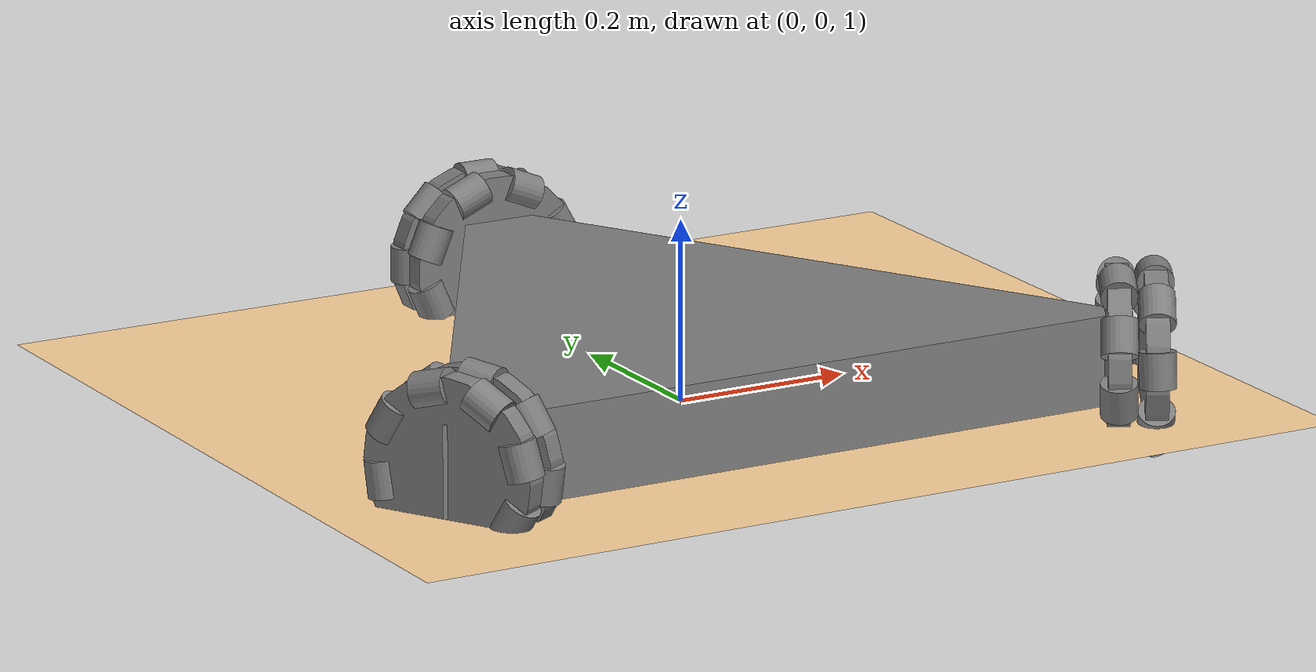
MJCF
<?xml version="1.0" encoding="utf-8"?>
<mujoco model="triangular_base">

	<!-- set some defaults for units and lighting -->
	<compiler angle="degree" meshdir="./stl_exports/"/>

	<option timestep="0.001"/>

	<!-- import our stl files -->
	<asset>
		<mesh name="baseplate" file="baseplate_robot.stl" />
		<mesh name="wheel" file="wheel_for_mujoco.stl" />
	</asset>

	<!-- define our robot model -->
	<worldbody>
		<!-- set up a light pointing down on the robot -->
		<light directional="true" pos="-0.5 0.5 3" dir="0 0 -1" />
		<camera name="track_camera" mode="targetbodycom" target="base" euler="0 0 0" fovy="60" pos="0 0 2" />
		<!-- add a floor so we don't stare off into the abyss -->
		<geom name="floor" pos="0 0 1" size="50 50 50" type="plane" rgba="1 0.83 0.61 0.5"/>

		<!-- start building our model -->
		<body name="base" pos="0 0 0">
			<joint name="joint_base" type="free" axis="0 0 0"/>
			<geom name="baseplate_robot" type="mesh" mesh="baseplate" pos="0 0 1"/>
			<inertial pos="0 0 1" mass="150" diaginertia="1 1 1"/>

			<!-- Attach wheels to the main body -->
			<!--							cos(15 degree)	sin(15 degree)-->
			<body name="wheel_1_body" pos=".4 -.2325 1.05" quat="0.5 1 0 .866">
				<joint name="joint1" type="hinge" axis="0 0 1" damping="50"/>
				<geom type="cylinder" size=".1 .0125 .01"/>

				<inertial pos="0 0 1" mass="5" diaginertia="0.5 0.5 1"/>

				<body name="wheel_1_omni0" pos="0 -.085 0" quat="0 -1 0 1">
					<joint name="joint1_omni0" type="hinge" axis="0 0 1" damping="0.1"/>
					<geom type="cylinder" size=".02 .02 .02" contype="1" conaffinity="0"/>

					<inertial pos="0 0 1" mass="0.001" diaginertia="0.00001 0.00001 0.00001"/>

				</body>

				<body name="wheel_1_omni1" pos="0 .085 0" quat="0 -1 0 1">
					<joint name="joint1_omni1" type="hinge" axis="0 0 1" damping="0.1"/>
					<geom type="cylinder" size=".02 .02 .02" contype="1" conaffinity="0"/>

					<inertial pos="0 0 1" mass="0.001" diaginertia="0.00001 0.00001 0.00001"/>

				</body>

				<body name="wheel_1_omni2" pos=".085 0 0" quat="1 1 0 0">
					<joint name="joint1_omni2" type="hinge" axis="0 0 1" damping="0.1"/>
					<geom type="cylinder" size=".02 .02 .02" contype="1" conaffinity="0"/>

					<inertial pos="0 0 1" mass="5" diaginertia="0.00001 0.00001 0.00001"/>

				</body>

				<body name="wheel_1_omni3" pos="-.085 0 0" quat="1 1 0 0">
					<joint name="joint1_omni3" type="hinge" axis="0 0 1" damping="0.1"/>
					<geom type="cylinder" size=".02 .02 .02" contype="1" conaffinity="0"/>

					<inertial pos="0 0 1" mass="0.001" diaginertia="0.00001 0.00001 0.00001"/>

				</body>

				<body name="wheel_1_omni4" pos="-.06 -.06 0" quat="0.676 0.227 0.661 -.233">
					<joint name="joint1_omni4" type="hinge" axis="0 0 1" damping="0.1"/>
					<geom type="cylinder" size=".02 .02 .02" contype="1" conaffinity="0"/>

					<inertial pos="0 0 1" mass="0.001" diaginertia="0.00001 0.00001 0.00001"/>

				</body>

				<body name="wheel_1_omni5" pos=".06 -.06 0" quat="0.661 -0.268 0.645 .274">
					<joint name="joint1_omni5" type="hinge" axis="0 0 1" damping="0.1"/>
					<geom type="cylinder" size=".02 .02 .02" contype="1" conaffinity="0"/>

					<inertial pos="0 0 1" mass="0.001" diaginertia="0.00001 0.00001 0.00001"/>

				</body>

				<body name="wheel_1_omni6" pos=".06 .06 0" quat="0.276 -0.642 0.268 .663">
					<joint name="joint1_omni6" type="hinge" axis="0 0 1" damping="0.1"/>
					<geom type="cylinder" size=".02 .02 .02" contype="1" conaffinity="0"/>

					<inertial pos="0 0 1" mass="0.001" diaginertia="0.00001 0.00001 0.00001"/>

				</body>

				<body name="wheel_1_omni7" pos="-.06 .06 0" quat="-0.276 -0.642 -0.268 .663">
					<joint name="joint1_omni7" type="hinge" axis="0 0 1" damping="0.1"/>
					<geom type="cylinder" size=".02 .02 .02" contype="1" conaffinity="0"/>

					<inertial pos="0 0 1" mass="0.001" diaginertia="0.00001 0.00001 0.00001"/>

				</body>

				<!-- Second Wheel -->

				<body name="wheel_1_body1" pos="0 0 0.04" quat="0.195 0 0 0.975">
					<geom type="cylinder" size=".1 .0125 .01"/>

					<inertial pos="0 0 1" mass="5" diaginertia="0.5 0.5 1"/>

					<body name="wheel_1_1omni0" pos="0 -.085 0" quat="0 -1 0 1">
						<joint name="joint1_1omni0" type="hinge" axis="0 0 1" damping="0.1"/>
						<geom type="cylinder" size=".02 .02 .02" contype="1" conaffinity="0"/>

						<inertial pos="0 0 1" mass="1" diaginertia="0.00001 0.00001 0.00001"/>

					</body>

					<body name="wheel_1_1omni1" pos="0 .085 0" quat="0 -1 0 1">
						<joint name="joint1_1omni1" type="hinge" axis="0 0 1" damping="0.1"/>
						<geom type="cylinder" size=".02 .02 .02" contype="1" conaffinity="0"/>

						<inertial pos="0 0 1" mass="0.001" diaginertia="0.00001 0.00001 0.00001"/>
					</body>

					<body name="wheel_1_1omni2" pos=".085 0 0" quat="1 1 0 0">
						<joint name="joint1_1omni2" type="hinge" axis="0 0 1" damping="0.1"/>
						<geom type="cylinder" size=".02 .02 .02" contype="1" conaffinity="0"/>

						<inertial pos="0 0 1" mass="0.001" diaginertia="0.00001 0.00001 0.00001"/>

					</body>

					<body name="wheel_1_1omni3" pos="-.085 0 0" quat="1 1 0 0">
						<joint name="joint1_1omni3" type="hinge" axis="0 0 1" damping="0.1"/>
						<geom type="cylinder" size=".02 .02 .02" contype="1" conaffinity="0"/>

						<inertial pos="0 0 1" mass="0.001" diaginertia="0.00001 0.00001 0.00001"/>

					</body>

					<body name="wheel_1_1omni4" pos="-.06 -.06 0" quat="0.676 0.227 0.661 -.233">
						<joint name="joint1_1omni4" type="hinge" axis="0 0 1" damping="0.1"/>
						<geom type="cylinder" size=".02 .02 .02" contype="1" conaffinity="0"/>

						<inertial pos="0 0 1" mass="0.001" diaginertia="0.00001 0.00001 0.00001"/>

					</body>

					<body name="wheel_1_1omni5" pos=".06 -.06 0" quat="0.661 -0.268 0.645 .274">
						<joint name="joint1_1omni5" type="hinge" axis="0 0 1" damping="0.1"/>
						<geom type="cylinder" size=".02 .02 .02" contype="1" conaffinity="0"/>

						<inertial pos="0 0 1" mass="0.001" diaginertia="0.00001 0.00001 0.00001"/>

					</body>

					<body name="wheel_1_1omni6" pos=".06 .06 0" quat="0.276 -0.642 0.268 .663">
						<joint name="joint1_1omni6" type="hinge" axis="0 0 1" damping="0.1"/>
						<geom type="cylinder" size=".02 .02 .02" contype="1" conaffinity="0"/>

						<inertial pos="0 0 1" mass="0.001" diaginertia="0.00001 0.00001 0.00001"/>

					</body>

					<body name="wheel_1_1omni7" pos="-.06 .06 0" quat="-0.276 -0.642 -0.268 .663">
						<joint name="joint1_1omni7" type="hinge" axis="0 0 1" damping="0.1"/>
						<geom type="cylinder" size=".02 .02 .02" contype="1" conaffinity="0"/>

						<inertial pos="0 0 1" mass="0.001" diaginertia="0.00001 0.00001 0.00001"/>

					</body>

				</body>

			</body>

			<body name="wheel_2_body" pos="0 .46 1.05" quat="1 1 0 0"> <!-- This quat makes cylinder parallel with 3D y-axis and straight up -->
				<joint name="joint2" type="hinge" axis="0 0 1" damping="50"/> <!-- GOOD -->
				<geom type="cylinder" size=".1 .0125 .01"/>
				<inertial pos="0 0 1" mass="5" diaginertia="0.5 0.5 1"/>

				<body name="wheel_2_omni0" pos="0 -.085 0" quat="0 -1 0 1">
					<joint name="joint2_omni0" type="hinge" axis="0 0 1" damping="0.1"/>
					<geom type="cylinder" size=".02 .02 .02" contype="1" conaffinity="0"/>

					<inertial pos="0 0 1" mass="0.001" diaginertia="0.00001 0.00001 0.00001"/>

				</body>

				<body name="wheel_2_omni1" pos="0 .085 0" quat="0 -1 0 1">
					<joint name="joint2_omni1" type="hinge" axis="0 0 1" damping="0.1"/>
					<geom type="cylinder" size=".02 .02 .02" contype="1" conaffinity="0"/>

					<inertial pos="0 0 1" mass="0.001" diaginertia="0.00001 0.00001 0.00001"/>

				</body>

				<body name="wheel_2_omni2" pos=".085 0 0" quat="1 1 0 0">
					<joint name="joint2_omni2" type="hinge" axis="0 0 1" damping="0.1"/>
					<geom type="cylinder" size=".02 .02 .02" contype="1" conaffinity="0"/>

					<inertial pos="0 0 1" mass="0.001" diaginertia="0.00001 0.00001 0.00001"/>

				</body>

				<body name="wheel_2_omni3" pos="-.085 0 0" quat="1 1 0 0">
					<joint name="joint2_omni3" type="hinge" axis="0 0 1" damping="0.1"/>
					<geom type="cylinder" size=".02 .02 .02" contype="1" conaffinity="0"/>

					<inertial pos="0 0 1" mass="0.001" diaginertia="0.00001 0.00001 0.00001"/>

				</body>

				<body name="wheel_2_omni4" pos="-.06 -.06 0" quat="0.676 0.227 0.661 -.233">
					<joint name="joint2_omni4" type="hinge" axis="0 0 1" damping="0.1"/>
					<geom type="cylinder" size=".02 .02 .02" contype="1" conaffinity="0"/>

					<inertial pos="0 0 1" mass="0.001" diaginertia="0.00001 0.00001 0.00001"/>

				</body>

				<body name="wheel_2_omni5" pos=".06 -.06 0" quat="0.661 -0.268 0.645 .274">
					<joint name="joint2_omni5" type="hinge" axis="0 0 1" damping="0.1"/>
					<geom type="cylinder" size=".02 .02 .02" contype="1" conaffinity="0"/>

					<inertial pos="0 0 1" mass="0.001" diaginertia="0.00001 0.00001 0.00001"/>

				</body>

				<body name="wheel_2_omni6" pos=".06 .06 0" quat="0.276 -0.642 0.268 .663">
					<joint name="joint2_omni6" type="hinge" axis="0 0 1" damping="0.1"/>
					<geom type="cylinder" size=".02 .02 .02" contype="1" conaffinity="0"/>

					<inertial pos="0 0 1" mass="0.001" diaginertia="0.00001 0.00001 0.00001"/>

				</body>

				<body name="wheel_2_omni7" pos="-.06 .06 0" quat="-0.276 -0.642 -0.268 .663">
					<joint name="joint2_omni7" type="hinge" axis="0 0 1" damping="0.1"/>
					<geom type="cylinder" size=".02 .02 .02" contype="1" conaffinity="0"/>

					<inertial pos="0 0 1" mass="0.001" diaginertia="0.00001 0.00001 0.00001"/>

				</body>

				<!-- Second Wheel -->

				<!-- Second Second Wheel -->

				<body name="wheel_2_body1" pos="0 0 0.04" quat="0.195 0 0 0.975">
					<geom type="cylinder" size=".1 .0125 .01"/>

					<inertial pos="0 0 1" mass="5" diaginertia="0.5 0.5 1"/>

					<body name="wheel_2_1omni0" pos="0 -.085 0" quat="0 -1 0 1">
						<joint name="joint2_1omni0" type="hinge" axis="0 0 1" damping="0.1"/>
						<geom type="cylinder" size=".02 .02 .02" contype="1" conaffinity="0"/>

						<inertial pos="0 0 1" mass="0.001" diaginertia="0.00001 0.00001 0.00001"/>

					</body>

					<body name="wheel_2_1omni1" pos="0 .085 0" quat="0 -1 0 1">
						<joint name="joint2_1omni1" type="hinge" axis="0 0 1" damping="0.1"/>
						<geom type="cylinder" size=".02 .02 .02" contype="1" conaffinity="0"/>

						<inertial pos="0 0 1" mass="0.001" diaginertia="0.00001 0.00001 0.00001"/>
					</body>

					<body name="wheel_2_1omni2" pos=".085 0 0" quat="1 1 0 0">
						<joint name="joint2_1omni2" type="hinge" axis="0 0 1" damping="0.1"/>
						<geom type="cylinder" size=".02 .02 .02" contype="1" conaffinity="0"/>

						<inertial pos="0 0 1" mass="0.001" diaginertia="0.00001 0.00001 0.00001"/>

					</body>

					<body name="wheel_2_1omni3" pos="-.085 0 0" quat="1 1 0 0">
						<joint name="joint2_1omni3" type="hinge" axis="0 0 1" damping="0.1"/>
						<geom type="cylinder" size=".02 .02 .02" contype="1" conaffinity="0"/>

						<inertial pos="0 0 1" mass="0.001" diaginertia="0.00001 0.00001 0.00001"/>

					</body>

					<body name="wheel_2_1omni4" pos="-.06 -.06 0" quat="0.676 0.227 0.661 -.233">
						<joint name="joint2_1omni4" type="hinge" axis="0 0 1" damping="0.1"/>
						<geom type="cylinder" size=".02 .02 .02" contype="1" conaffinity="0"/>

						<inertial pos="0 0 1" mass="0.001" diaginertia="0.00001 0.00001 0.00001"/>

					</body>

					<body name="wheel_2_1omni5" pos=".06 -.06 0" quat="0.661 -0.268 0.645 .274">
						<joint name="joint2_1omni5" type="hinge" axis="0 0 1" damping="0.1"/>
						<geom type="cylinder" size=".02 .02 .02" contype="1" conaffinity="0"/>

						<inertial pos="0 0 1" mass="0.001" diaginertia="0.00001 0.00001 0.00001"/>

					</body>

					<body name="wheel_2_1omni6" pos=".06 .06 0" quat="0.276 -0.642 0.268 .663">
						<joint name="joint2_1omni6" type="hinge" axis="0 0 1" damping="0.1"/>
						<geom type="cylinder" size=".02 .02 .02" contype="1" conaffinity="0"/>

						<inertial pos="0 0 1" mass="0.001" diaginertia="0.00001 0.00001 0.00001"/>

					</body>

					<body name="wheel_2_1omni7" pos="-.06 .06 0" quat="-0.276 -0.642 -0.268 .663">
						<joint name="joint2_1omni7" type="hinge" axis="0 0 1" damping="0.1"/>
						<geom type="cylinder" size=".02 .02 .02" contype="1" conaffinity="0"/>

						<inertial pos="0 0 1" mass="0.001" diaginertia="0.00001 0.00001 0.00001"/>

					</body>
				</body>
			</body>

			<body name="wheel_3_body" pos="-.4 -.2325 1.05" quat="-0.5 1 0 .866">
				<joint name="joint3" type="hinge" axis="0 0 1" damping="50"/>
				<geom type="cylinder" size=".1 .0125 .01"/>
				<inertial pos="0 0 1" mass="5" diaginertia="0.5 0.5 1"/>

				<body name="wheel_3_omni0" pos="0 -.085 0" quat="0 -1 0 1">
					<joint name="joint3_omni0" type="hinge" axis="0 0 1" damping="0.1" limited="false" actuatorfrclimited="false"/>
					<geom type="cylinder" size=".02 .02 .02" contype="1" conaffinity="0"/>

					<inertial pos="0 0 1" mass="0.001" diaginertia="0.00001 0.00001 0.00001"/>

				</body>

				<body name="wheel_3_omni1" pos="0 .085 0" quat="0 -1 0 1">
					<joint name="joint3_omni1" type="hinge" axis="0 0 1" damping="0.1" limited="false" actuatorfrclimited="false"/>
					<geom type="cylinder" size=".02 .02 .02" contype="1" conaffinity="0"/>

					<inertial pos="0 0 1" mass="0.001" diaginertia="0.00001 0.00001 0.00001"/>

				</body>

				<body name="wheel_3_omni2" pos=".085 0 0" quat="1 1 0 0">
					<joint name="joint3_omni2" type="hinge" axis="0 0 1" damping="0.1" limited="false" actuatorfrclimited="false"/>
					<geom type="cylinder" size=".02 .02 .02" contype="1" conaffinity="0"/>

					<inertial pos="0 0 1" mass="0.001" diaginertia="0.00001 0.00001 0.00001"/>

				</body>

				<body name="wheel_3_omni3" pos="-.085 0 0" quat="1 1 0 0">
					<joint name="joint3_omni3" type="hinge" axis="0 0 1" damping="0.1" limited="false" actuatorfrclimited="false"/>
					<geom type="cylinder" size=".02 .02 .02" contype="1" conaffinity="0"/>

					<inertial pos="0 0 1" mass="0.001" diaginertia="0.00001 0.00001 0.00001"/>

				</body>

				<body name="wheel_3_omni4" pos="-.06 -.06 0" quat="0.676 0.227 0.661 -.233">
					<joint name="joint3_omni4" type="hinge" axis="0 0 1" damping="0.1" limited="false" actuatorfrclimited="false"/>
					<geom type="cylinder" size=".02 .02 .02" contype="1" conaffinity="0"/>

					<inertial pos="0 0 1" mass="0.001" diaginertia="0.00001 0.00001 0.00001"/>

				</body>

				<body name="wheel_3_omni5" pos=".06 -.06 0" quat="0.661 -0.268 0.645 .274">
					<joint name="joint3_omni5" type="hinge" axis="0 0 1" damping="0.1" limited="false" actuatorfrclimited="false"/>
					<geom type="cylinder" size=".02 .02 .02" contype="1" conaffinity="0"/>

					<inertial pos="0 0 1" mass="0.001" diaginertia="0.00001 0.00001 0.00001"/>

				</body>

				<body name="wheel_3_omni6" pos=".06 .06 0" quat="0.276 -0.642 0.268 .663">
					<joint name="joint3_omni6" type="hinge" axis="0 0 1" damping="0.1" limited="false" actuatorfrclimited="false"/>
					<geom type="cylinder" size=".02 .02 .02" contype="1" conaffinity="0"/>

					<inertial pos="0 0 1" mass="0.001" diaginertia="0.00001 0.00001 0.00001"/>

				</body>

				<body name="wheel_3_omni7" pos="-.06 .06 0" quat="-0.276 -0.642 -0.268 .663">
					<joint name="joint3_omni7" type="hinge" axis="0 0 1" damping="0.1" limited="false" actuatorfrclimited="false"/>
					<geom type="cylinder" size=".02 .02 .02" contype="1" conaffinity="0"/>

					<inertial pos="0 0 1" mass="0.001" diaginertia="0.00001 0.00001 0.00001"/>

				</body>

				<!-- Second Wheel -->

				<!-- Second Wheel -->

			<body name="wheel_3_body1" pos="0 0 0.04" quat="0.195 0 0 0.975">
				<geom type="cylinder" size=".1 .0125 .01"/>

				<inertial pos="0 0 1" mass="1" diaginertia="0.5 0.5 1"/>

				<body name="wheel_3_1omni0" pos="0 -.085 0" quat="0 -1 0 1">
					<joint name="joint3_1omni0" type="hinge" axis="0 0 1" damping="0.1" limited="false" actuatorfrclimited="false"/>
					<geom type="cylinder" size=".02 .02 .02" contype="1" conaffinity="0"/>

					<inertial pos="0 0 1" mass="0.001" diaginertia="0.00001 0.00001 0.00001"/>

				</body>

				<body name="wheel_3_1omni1" pos="0 .085 0" quat="0 -1 0 1">
					<joint name="joint3_1omni1" type="hinge" axis="0 0 1" damping="0.1" limited="false" actuatorfrclimited="false"/>
					<geom type="cylinder" size=".02 .02 .02" contype="1" conaffinity="0"/>

					<inertial pos="0 0 1" mass="0.001" diaginertia="0.00001 0.00001 0.00001"/>
				</body>

				<body name="wheel_3_1omni2" pos=".085 0 0" quat="1 1 0 0">
					<joint name="joint3_1omni2" type="hinge" axis="0 0 1" damping="0.1" limited="false" actuatorfrclimited="false"/>
					<geom type="cylinder" size=".02 .02 .02" contype="1" conaffinity="0"/>

					<inertial pos="0 0 1" mass="0.001" diaginertia="0.00001 0.00001 0.00001"/>
				</body>

				<body name="wheel_3_1omni3" pos="-.085 0 0" quat="1 1 0 0">
					<joint name="joint3_1omni3" type="hinge" axis="0 0 1" damping="0.1" limited="false" actuatorfrclimited="false"/>
			 		<geom type="cylinder" size=".02 .02 .02" contype="1" conaffinity="0"/>

					<inertial pos="0 0 1" mass="0.001" diaginertia="0.00001 0.00001 0.00001"/>
				</body>

				<body name="wheel_3_1omni4" pos="-.06 -.06 0" quat="0.676 0.227 0.661 -.233">
					<joint name="joint3_1omni4" type="hinge" axis="0 0 1" damping="0.1" limited="false" actuatorfrclimited="false"/>
					<geom type="cylinder" size=".02 .02 .02" contype="1" conaffinity="0"/>

					<inertial pos="0 0 1" mass="0.001" diaginertia="0.00001 0.00001 0.00001"/>

				</body>

				<body name="wheel_3_1omni5" pos=".06 -.06 0" quat="0.661 -0.268 0.645 .274">
					<joint name="joint3_1omni5" type="hinge" axis="0 0 1" damping="0.1" limited="false" actuatorfrclimited="false"/>
					<geom type="cylinder" size=".02 .02 .02" contype="1" conaffinity="0"/>

					<inertial pos="0 0 1" mass="0.001" diaginertia="0.00001 0.00001 0.00001"/>

				</body>

				<body name="wheel_3_1omni6" pos=".06 .06 0" quat="0.276 -0.642 0.268 .663">
					<joint name="joint3_1omni6" type="hinge" axis="0 0 1" damping="0.1" limited="false" actuatorfrclimited="false"/>
					<geom type="cylinder" size=".02 .02 .02" contype="1" conaffinity="0"/>

					<inertial pos="0 0 1" mass="0.001" diaginertia="0.00001 0.00001 0.00001"/>

				</body>

				<body name="wheel_3_1omni7" pos="-.06 .06 0" quat="-0.276 -0.642 -0.268 .663">
					<joint name="joint3_1omni7" type="hinge" axis="0 0 1" damping="0.1" limited="false" actuatorfrclimited="false"/>
					<geom type="cylinder" size=".02 .02 .02" contype="1" conaffinity="0"/>

					<inertial pos="0 0 1" mass="0.001" diaginertia="0.00001 0.00001 0.00001"/>

				</body>

			</body>

			</body>
		</body>
	</worldbody>

	<!-- attach actuators to joints -->
	<actuator>
		<motor name="joint1_motor" joint="joint1" ctrlrange="-75 75.0" ctrllimited="true"/>

		<motor name="joint2_motor" joint="joint2" ctrlrange="-75 75.0" ctrllimited="true"/>

		<motor name="joint3_motor" joint="joint3" ctrlrange="-75 75.0" ctrllimited="true"/>

	</actuator>

  <sensor>

	<actuatorfrc name="joint1_motor" actuator="joint1_motor"/>
	<actuatorfrc name="joint2_motor" actuator="joint2_motor"/>
	<actuatorfrc name="joint3_motor" actuator="joint3_motor"/>

	<jointactuatorfrc name="joint1" joint="joint1"/>
	<jointactuatorfrc name="joint2" joint="joint2"/>
	<jointactuatorfrc name="joint3" joint="joint3"/>
  </sensor>

</mujoco>
